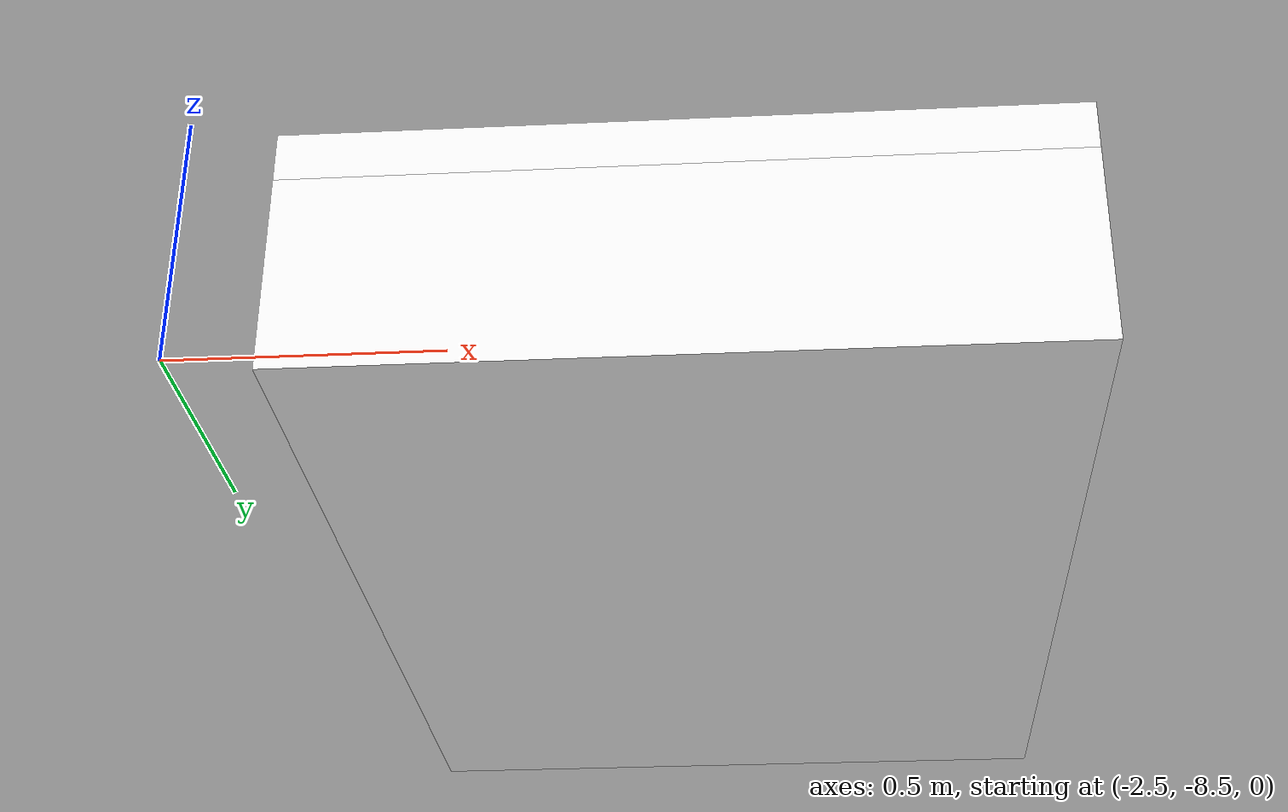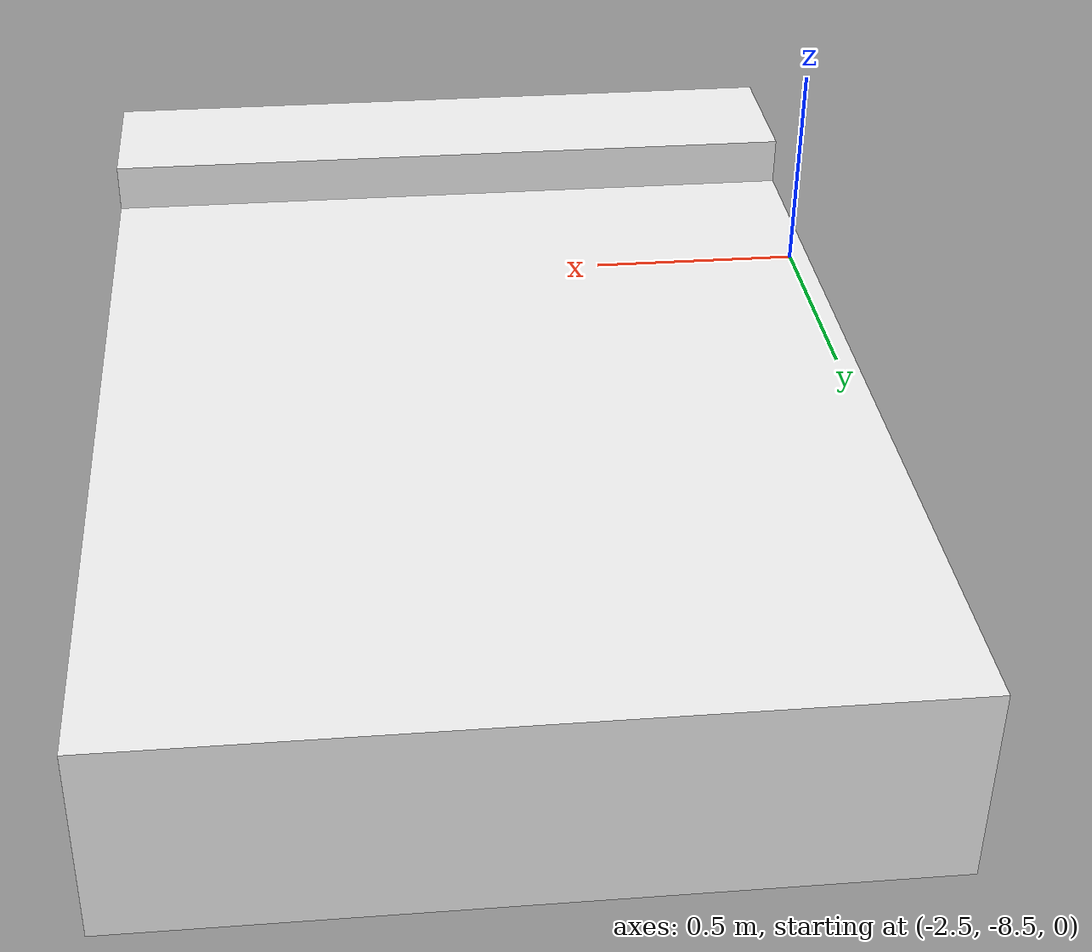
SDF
<?xml version="1.0" ?>
<sdf version='1.4'>
  <model name='cama'>
    <link name='cama_link'>
      <pose>0 0 0 0 -0 0</pose>
      <inertial>
        <pose>0.0176471 0 0.204902 0 -0 0</pose>
        <mass>51</mass>
        <inertia>
          <ixx>10.1613</ixx>
          <ixy>0</ixy>
          <ixz>-0.220588</ixz>
          <iyy>10.9554</iyy>
          <iyz>0</iyz>
          <izz>10.8941</izz>
        </inertia>
      </inertial>
      <collision name='cama_link_collision'>
        <pose>0 0 0.2 0 -0 0</pose>
        <geometry>
          <box>
            <size>2.1 1.5 0.4</size>
          </box>
        </geometry>
        <surface>
          <contact>
            <ode/>
          </contact>
          <friction>
            <ode>
              <mu>100</mu>
              <mu2>100</mu2>
            </ode>
          </friction>
          <bounce/>
        </surface>
        <max_contacts>10</max_contacts>
      </collision>
      <collision name='cama_link_collision_almohada_link'>
        <pose>0.9 0 0.45 0 -0 0</pose>
        <geometry>
          <box>
            <size>0.3 1.5 0.1</size>
          </box>
        </geometry>
        <surface>
          <contact>
            <ode/>
          </contact>
          <friction>
            <ode>
              <mu>100</mu>
              <mu2>100</mu2>
            </ode>
          </friction>
          <bounce/>
        </surface>
        <surface>
          <contact>
            <ode/>
          </contact>
          <friction>
            <ode>
              <mu>100</mu>
              <mu2>100</mu2>
            </ode>
          </friction>
        </surface>
        <max_contacts>10</max_contacts>
      </collision>
      <visual name='cama_link_visual'>
        <pose>0 0 0.2 0 -0 0</pose>
        <geometry>
          <box>
            <size>2.1 1.5 0.4</size>
          </box>
        </geometry>
        <material>
          <script>
            <name>Gazebo/White</name>
            <uri>__default__</uri>
          </script>
        </material>
      </visual>
      <visual name='cama_link_visual_almohada_link'>
        <pose>0.9 0 0.45 0 -0 0</pose>
        <geometry>
          <box>
            <size>0.3 1.5 0.1</size>
          </box>
        </geometry>
        <material>
          <script>
            <name>Gazebo/White</name>
            <uri>__default__</uri>
          </script>
        </material>
      </visual>
      <velocity_decay>
        <linear>0</linear>
        <angular>0</angular>
      </velocity_decay>
      <gravity>1</gravity>
      <velocity_decay>
        <linear>0</linear>
        <angular>0</angular>
      </velocity_decay>
      <self_collide>1</self_collide>
      <kinematic>0</kinematic>
    </link>
    <pose>-1.6 -7.41 0 0 0 -1.57</pose>
    <static>0</static>
  </model>
</sdf>
